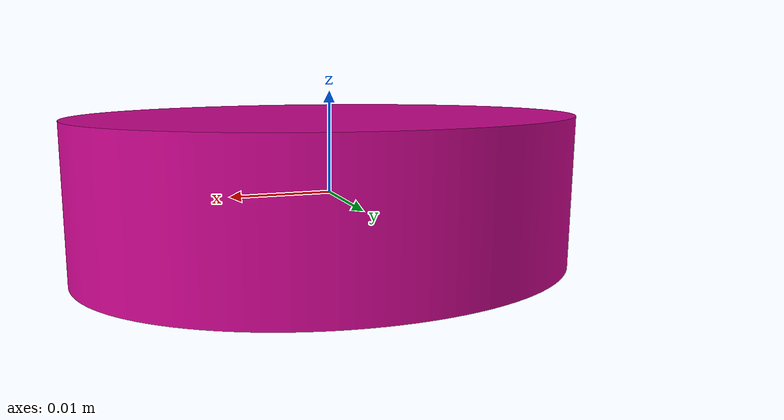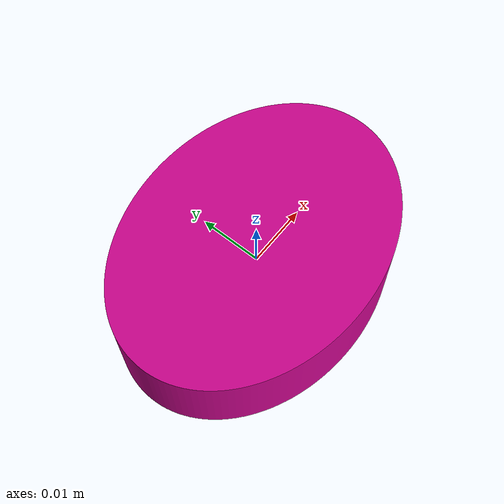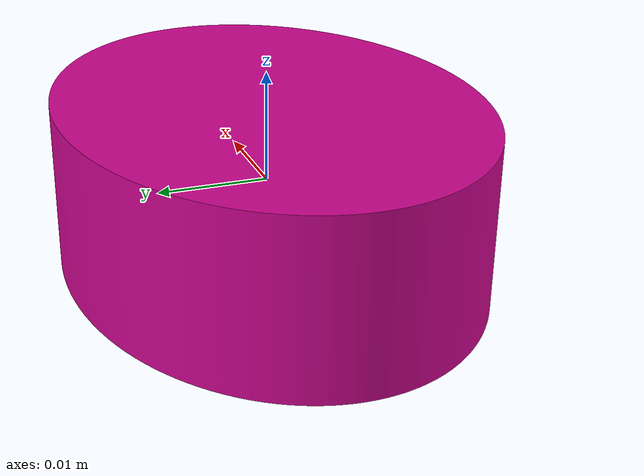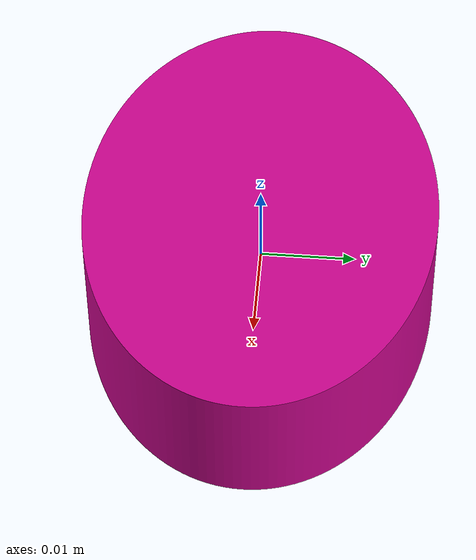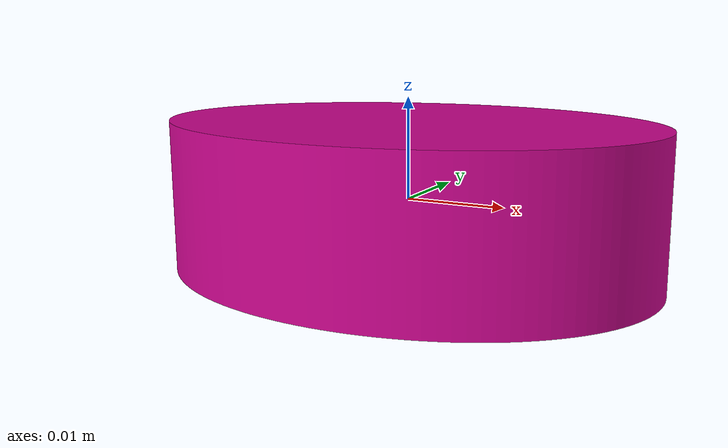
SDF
<?xml version="1.0" ?>
<sdf version="1.5">
  <model name="ovale_rose">
    <static>false</static>
    <link name="link">
      <pose>0 0 0 0 0 0</pose>
      <collision name="collision">
        <geometry>
          <mesh>
            <uri>model://ovale_rose/meshes/ovale_rose.dae</uri>
          </mesh>
        </geometry>
      </collision>
      <visual name="visual">
        <geometry>
          <mesh>
            <uri>model://ovale_rose/meshes/ovale_rose.dae</uri>
          </mesh>
        </geometry>
        <material>

        </material>
      </visual>
      <inertial>
        <mass>0.016</mass>
        <inertia> <!-- inertias are tricky to compute -->
          <!-- http://gazebosim.org/tutorials?tut=inertia&cat=build_robot -->
          <ixx>1.8e-6</ixx>       <!-- for a box: ixx = 0.083 * mass * (y*y + z*z) -->
          <ixy>0.0</ixy>         <!-- for a box: ixy = 0 -->
          <ixz>0.0</ixz>         <!-- for a box: ixz = 0 -->
          <iyy>3.0e-6</iyy>       <!-- for a box: iyy = 0.083 * mass * (x*x + z*z) -->
          <iyz>0.0</iyz>         <!-- for a box: iyz = 0 -->
          <izz>4.2e-6</izz>       <!-- for a box: izz = 0.083 * mass * (x*x + y*y) -->
        </inertia>
      </inertial>
    </link>
  </model>
</sdf>
